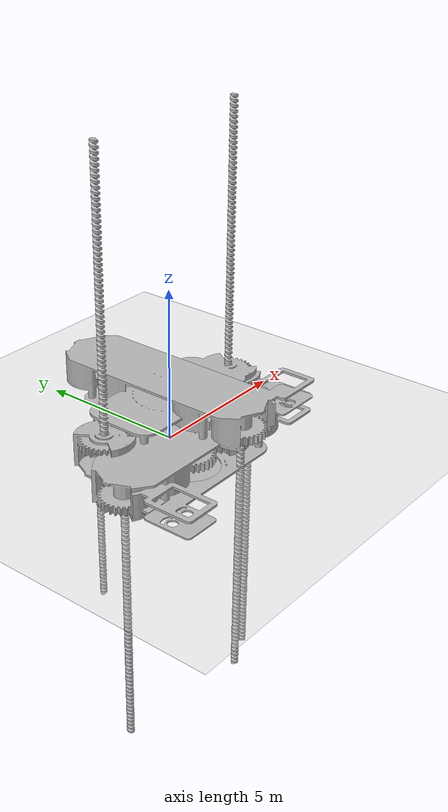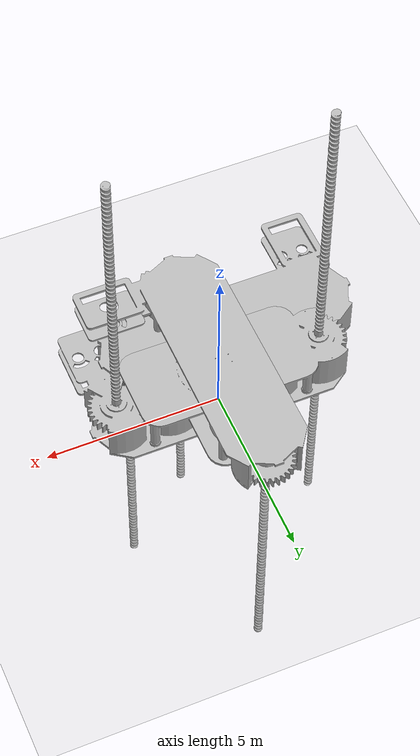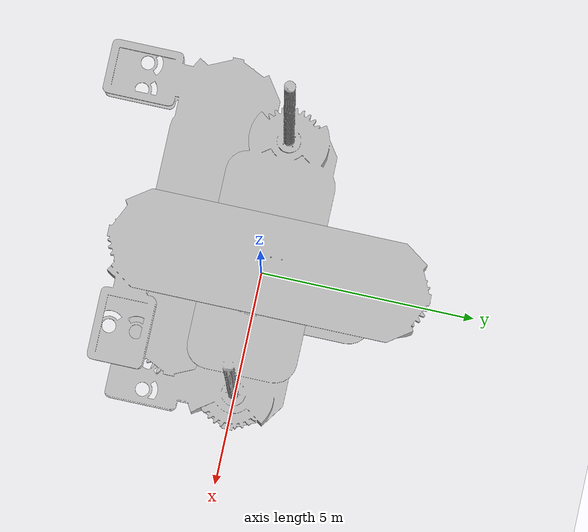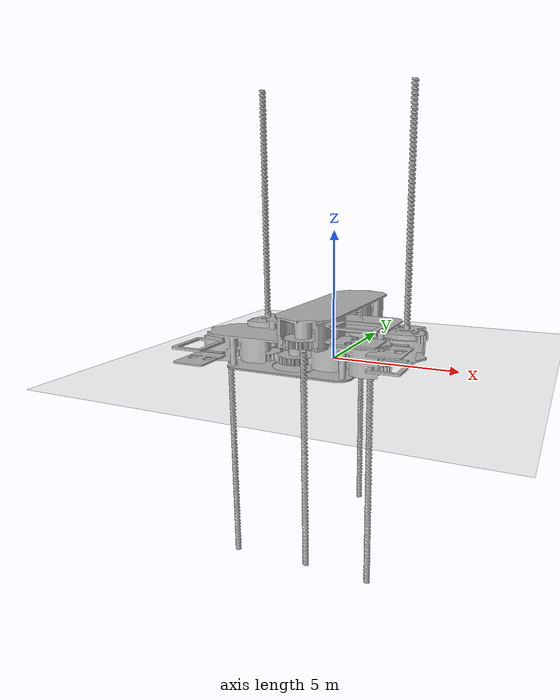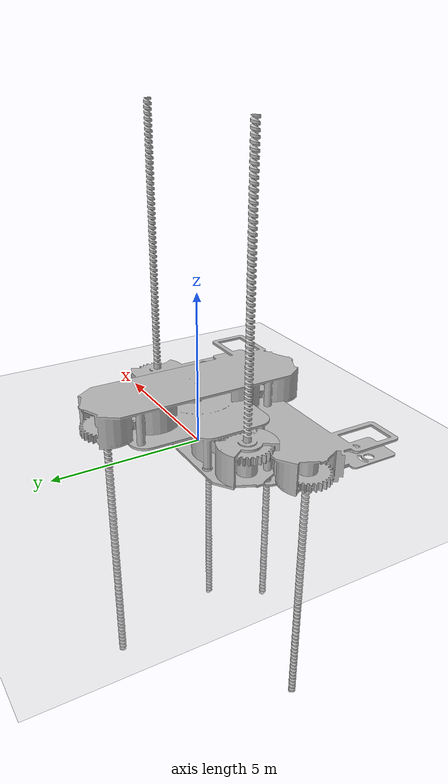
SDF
<sdf version="1.7">
 <world name="default">
  <light name="sun" type="directional">
   <pose>0 0 10 0 -0 0</pose>
   <diffuse>0.8 0.8 0.8 1</diffuse>
   <specular>0.2 0.2 0.2 1</specular>
   <attenuation>
    <range>1000</range>
    <constant>0.9</constant>
    <linear>0.01</linear>
    <quadratic>0.001</quadratic>
   </attenuation>
   <direction>-0.5 0.1 -0.9</direction>
   <spot><inner_angle>0</inner_angle><outer_angle>0</outer_angle><falloff>0</falloff></spot>
  </light>
  <model name="ground_plane">
   <static>1</static>
   <link name="link">
    <collision name="collision">
     <geometry><plane><normal>0 0 1</normal><size>100 100</size></plane></geometry>
     <surface>
      <contact><collide_bitmask>65535</collide_bitmask></contact>
      <friction><ode><mu>100</mu><mu2>50</mu2></ode></friction>
     </surface>
    </collision>
    <visual name="visual">
     <cast_shadows>0</cast_shadows>
     <geometry><plane><normal>0 0 1</normal><size>100 100</size></plane></geometry>
     <material>
      <script><uri>file://media/materials/scripts/gazebo.material</uri><name>Gazebo/Grey</name></script>
     </material>
    </visual>
   </link>
  </model>
  <gravity>0 0 -9.8</gravity>
  <magnetic_field>6e-06 2.3e-05 -4.2e-05</magnetic_field>
  <atmosphere type="adiabatic"/>
  <physics type="ode">
   <max_step_size>0.001</max_step_size>
   <real_time_factor>1</real_time_factor>
   <real_time_update_rate>1000</real_time_update_rate>
  </physics>
  <scene><ambient>0.4 0.4 0.4 1</ambient><background>0.7 0.7 0.7 1</background><shadows>1</shadows></scene>
  <spherical_coordinates>
   <surface_model>EARTH_WGS84</surface_model>
   <latitude_deg>0</latitude_deg>
   <longitude_deg>0</longitude_deg>
   <elevation>0</elevation>
   <heading_deg>0</heading_deg>
  </spherical_coordinates>
  <model name="ramptry2">
   <link name="base_link">
    <inertial>
     <pose>1.01342 -0.074889 -0.274754 0 -0 0</pose>
     <mass>5401.06</mass>
     <inertia>
      <ixx>7578.25</ixx>
      <ixy>280.815</ixy>
      <ixz>1005.74</ixz>
      <iyy>9954.78</iyy>
      <iyz>-317.608</iyz>
      <izz>3611.95</izz>
     </inertia>
    </inertial>
    <collision name="base_link_collision">
     <geometry><mesh><scale>1 1 1</scale><uri>/home/moulik/test1/src/meshes/base_link.STL</uri></mesh></geometry>
    </collision>
    <collision name="base_link_fixed_joint_lump__link1_collision_1">
     <pose>2.07532 -1.54073 0.001854 -3.14159 -0 -3.14159</pose>
     <geometry><mesh><scale>1 1 1</scale><uri>/home/moulik/test1/src/meshes/link1.STL</uri></mesh></geometry>
    </collision>
    <collision name="base_link_fixed_joint_lump__link2_collision_2">
     <pose>-0.00139 1.66923 1.00032 3.14159 -0 -1.5708</pose>
     <geometry><mesh><scale>1 1 1</scale><uri>/home/moulik/test1/src/meshes/link2.STL</uri></mesh></geometry>
    </collision>
    <visual name="base_link_visual">
     <geometry><mesh><scale>1 1 1</scale><uri>/home/moulik/test1/src/meshes/base_link.STL</uri></mesh></geometry>
    </visual>
    <visual name="base_link_fixed_joint_lump__link1_visual_1">
     <pose>2.07532 -1.54073 0.001854 -3.14159 -0 -3.14159</pose>
     <geometry><mesh><scale>1 1 1</scale><uri>/home/moulik/test1/src/meshes/link1.STL</uri></mesh></geometry>
    </visual>
    <visual name="base_link_fixed_joint_lump__link2_visual_2">
     <pose>-0.00139 1.66923 1.00032 3.14159 -0 -1.5708</pose>
     <geometry><mesh><scale>1 1 1</scale><uri>/home/moulik/test1/src/meshes/link2.STL</uri></mesh></geometry>
    </visual>
   </link>
   <pose>-0.000702 6.8e-05 0.320412 -9e-06 0 -0.000192</pose>
  </model>
  <model name="falling_sphere">
   <pose>1.79004 -0.05178 0.581249 1.1e-05 0.000193 -1e-06</pose>
   <link name="sphere_link">
    <collision name="sphere_collision">
     <geometry><sphere><radius>0.0287646</radius></sphere></geometry>
    </collision>
    <visual name="sphere_visual">
     <geometry><sphere><radius>0.0287646</radius></sphere></geometry>
     <material><ambient>1 0 0 1</ambient></material>
    </visual>
    <inertial>
     <mass>1</mass>
     <inertia><ixx>0.1</ixx><iyy>0.1</iyy><izz>0.1</izz><ixy>0</ixy><ixz>0</ixz><iyz>0</iyz></inertia>
    </inertial>
   </link>
  </model>
 </world>
</sdf>
